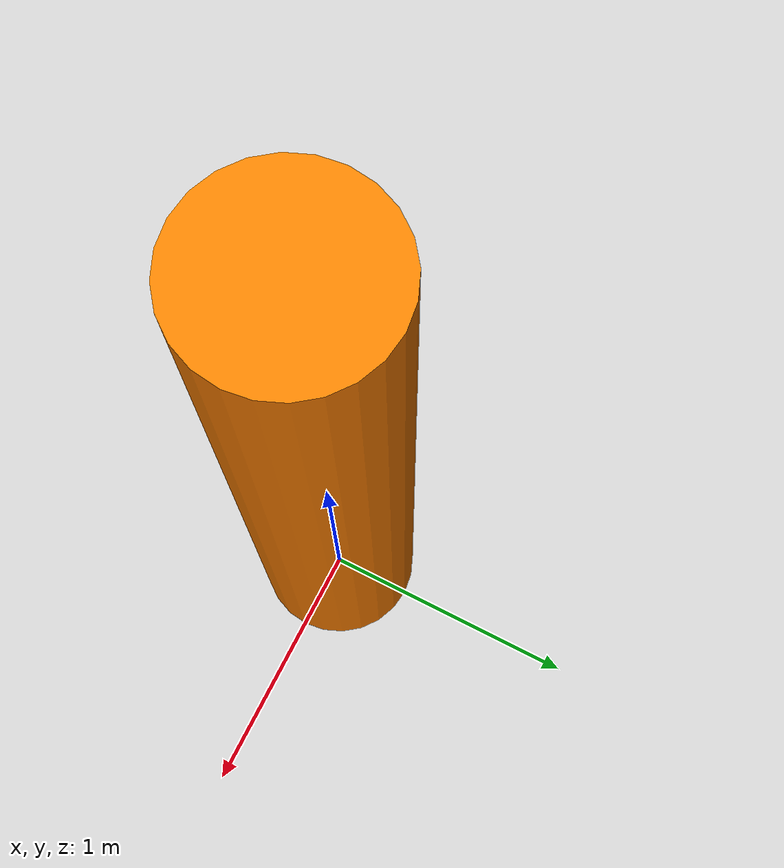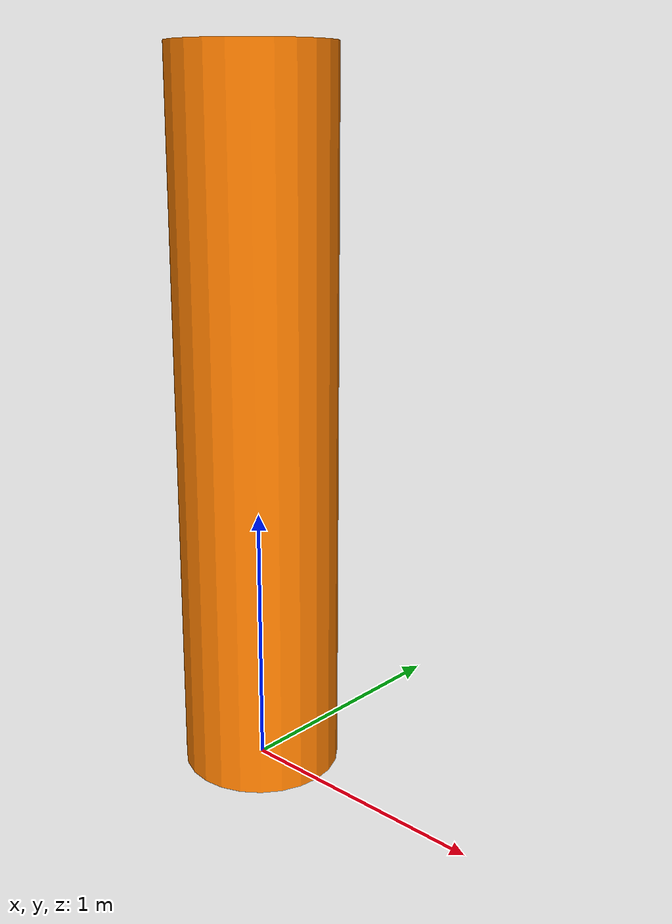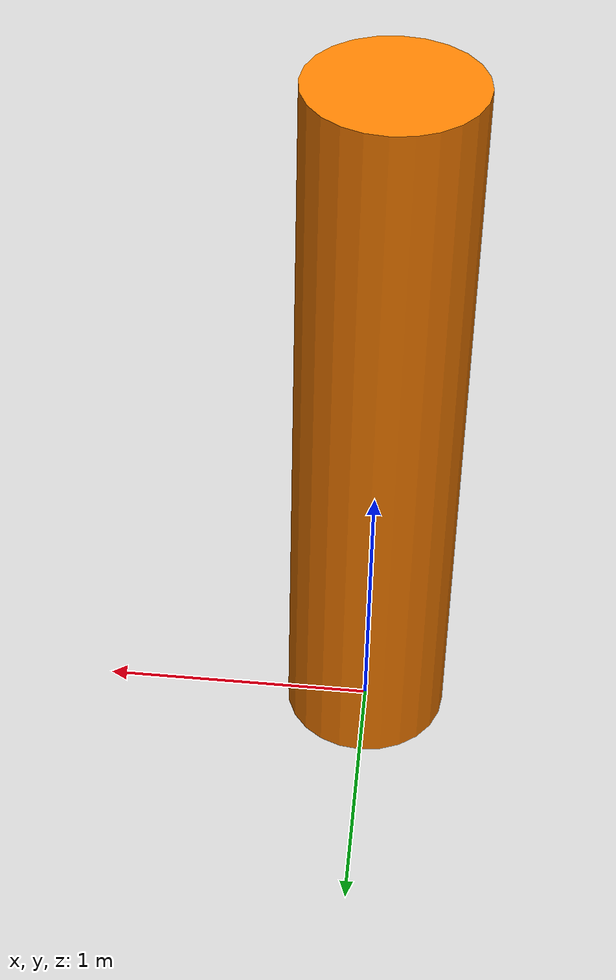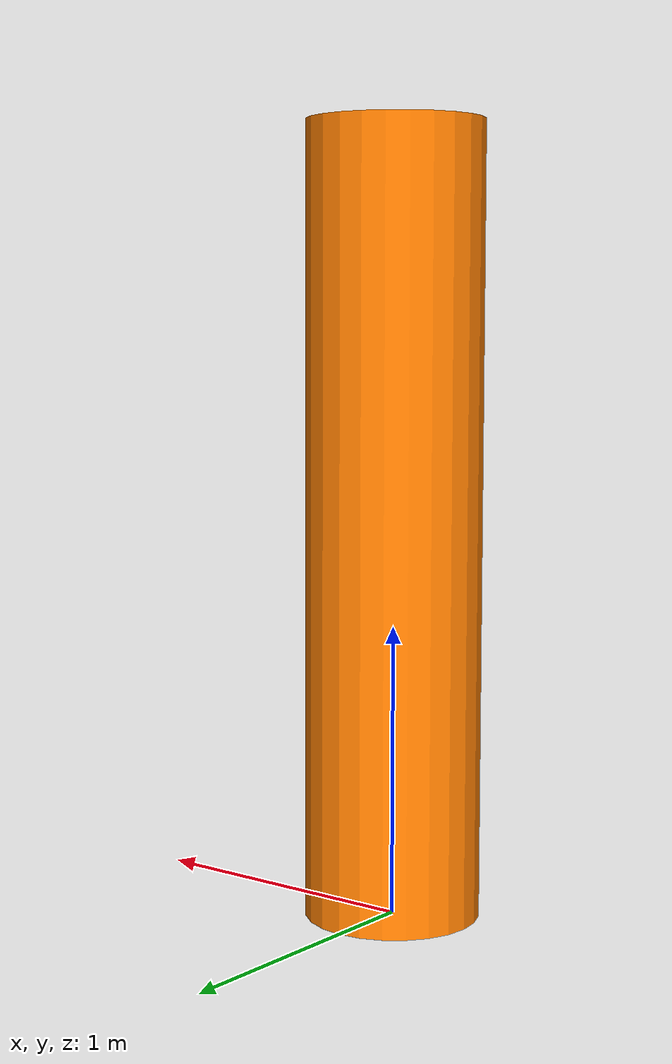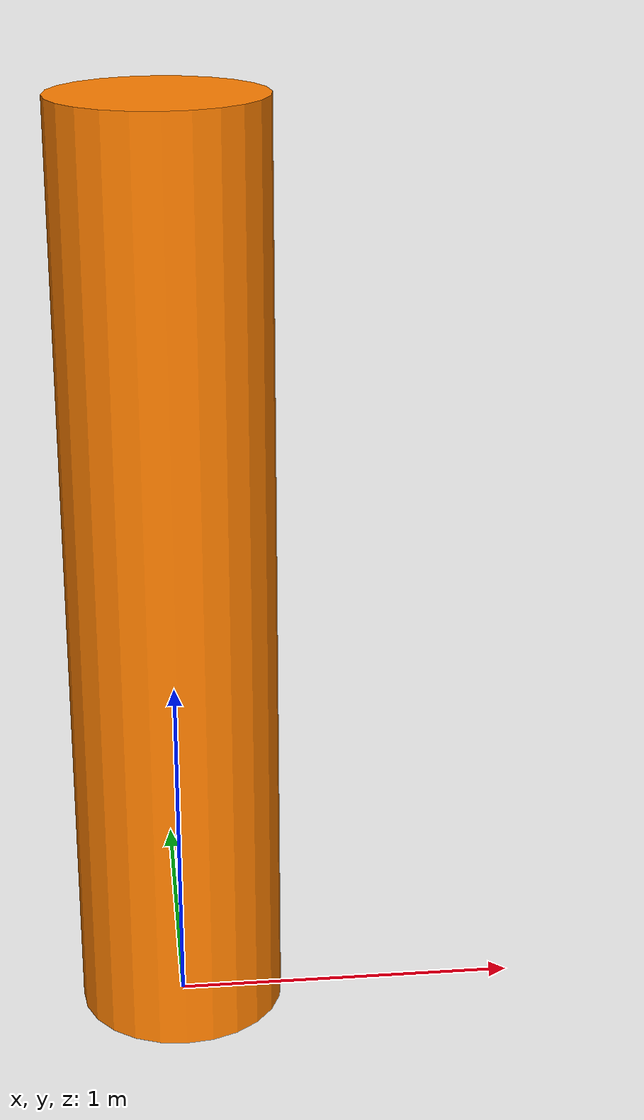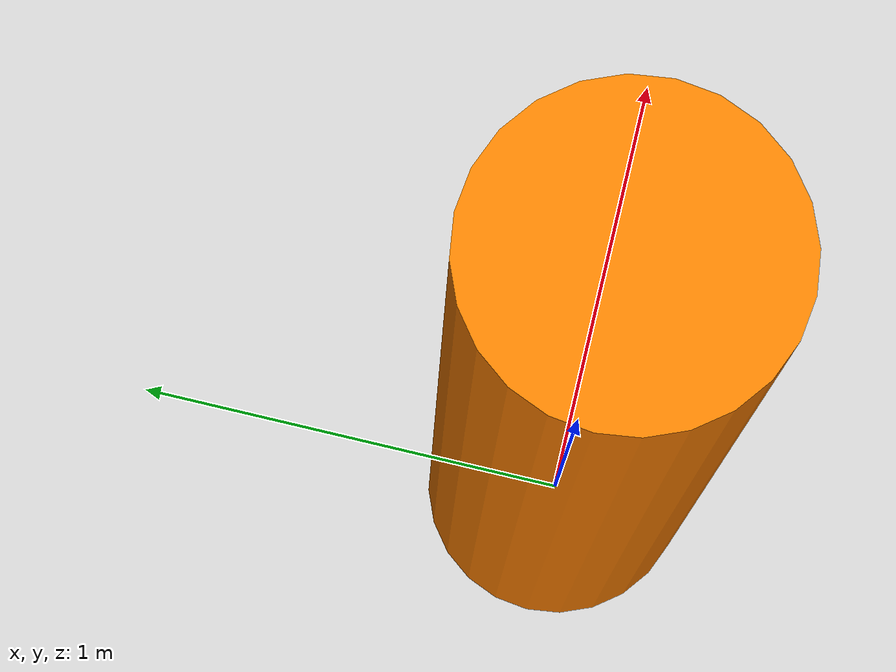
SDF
<?xml version="1.0" ?>
<sdf version="1.8">
<model name="Column">
      <pose>0 0 1.35 0 0 0</pose>
        <link name="comuln_link">
          <inertial>
            <mass>10.0</mass>
          </inertial>
          <collision name="collision">
            <geometry>
              <cylinder>
                <radius>0.3</radius>
                <length>2.3</length>
              </cylinder>
            </geometry>
          </collision>
          <visual name="visual">
            <geometry>
              <cylinder>
                <radius>0.3</radius>
                <length>2.7</length>
              </cylinder>
            </geometry>
            <material>
              <ambient>1 0.5 0 1</ambient>
              <diffuse>1 0.5 0 1</diffuse>
              <specular>1 0.5 0 1</specular>
            </material>
          </visual>
        </link>
      </model>
</sdf>
